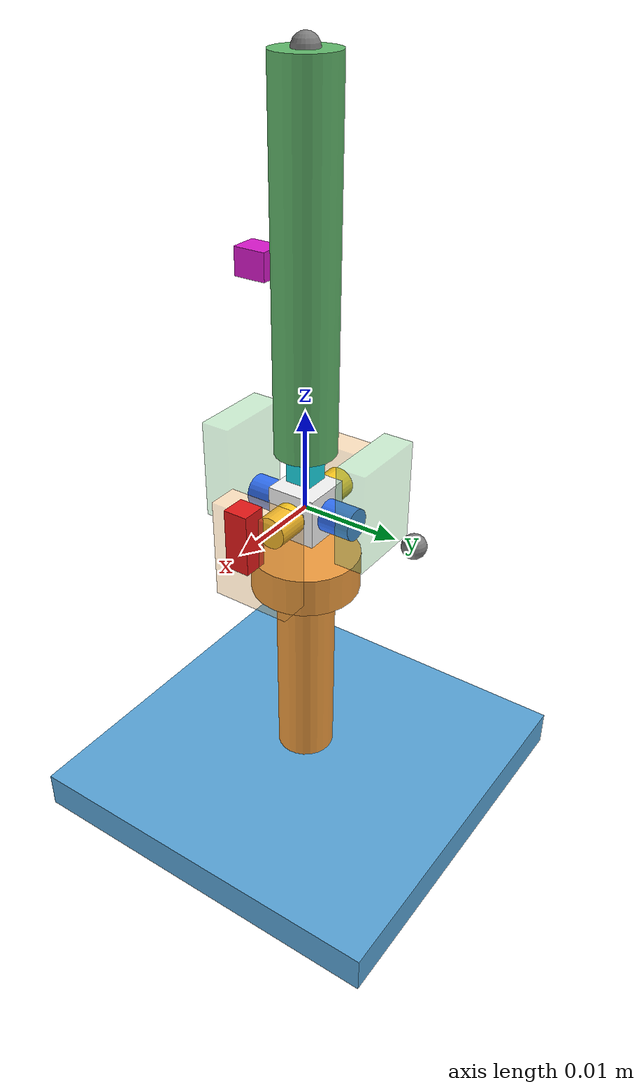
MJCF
<?xml version="1.0" ?>
<mujoco model="t2_ujoint_VA">
  <compiler angle="radian" autolimits="true"/>
  <option timestep="0.0001" integrator="implicitfast" cone="elliptic" impratio="10" gravity="0 0 0"/>
  <visual>
    <headlight ambient="0.5 0.5 0.5" diffuse="0.6 0.6 0.6" specular="0.2 0.2 0.2"/>
    <global offwidth="1280" offheight="960"/>
  </visual>
  <default>
    <geom density="0" contype="0" conaffinity="0" group="2"/>
  </default>
  <asset>
    <material name="base" rgba="0.35 0.65 0.85 1"/>
    <material name="input" rgba="0.95 0.62 0.25 1"/>
    <material name="yoke_in" rgba="0.98 0.68 0.30 0.35"/>
    <material name="output" rgba="0.38 0.72 0.42 1"/>
    <material name="yoke_out" rgba="0.45 0.82 0.50 0.35"/>
    <material name="cross_hub" rgba="0.97 0.97 0.97 1"/>
    <material name="cross_x" rgba="0.98 0.78 0.12 1"/>
    <material name="cross_y" rgba="0.20 0.45 0.98 1"/>
    <material name="mk_in" rgba="0.90 0.10 0.10 1"/>
    <material name="mk_cross" rgba="0.10 0.85 0.90 1"/>
    <material name="mk_out" rgba="0.85 0.10 0.80 1"/>
  </asset>
  <worldbody>
    <light pos="0.1 -0.2 0.3" dir="-0.2 0.4 -1" directional="true" diffuse="0.5 0.5 0.5"/>
    <camera name="side" pos="0 -0.16 0.0" xyaxes="1 0 0 0 0 1"/>
    <camera name="iso45" pos="0 -0.115 0.115" xyaxes="1 0 0 0 0.707 0.707"/>
    <geom name="base_plate" type="box" pos="0 0 -0.0335" size="0.02 0.02 0.002" material="base"/>
    <site name="wtip" pos="0.000000000 0.000000000 0.040000000" size="0.0012"/>
    <body name="input" pos="0 0 0">
      <joint name="jin" type="hinge" axis="0 0 1" pos="0 0 0" damping="1e-05" armature="1e-05"/>
      <geom name="in_shaft" type="cylinder" fromto="0 0 -0.030 0 0 -0.007" size="0.003" material="input" mass="0.008"/>
      <geom name="in_base" type="cylinder" fromto="0 0 -0.009 0 0 -0.005" size="0.0055" material="input" mass="0.002"/>
      <geom name="in_prongxp" type="box" pos="0.0075 0 -0.0015" size="0.0015 0.004 0.005" material="yoke_in" mass="0.001"/>
      <geom name="in_prongxn" type="box" pos="-0.0075 0 -0.0015" size="0.0015 0.004 0.005" material="yoke_in" mass="0.001"/>
      <geom name="mk_in" type="box" pos="0.009500000 0.000000000 0.001500000" size="0.001200000 0.001200000 0.003000000" material="mk_in"/>
      <body name="cross" pos="0 0 0">
        <joint name="pin1" type="hinge" axis="1 0 0" pos="0 0 0" damping="1e-05" armature="1e-05"/>
        <geom name="cr_hub" type="box" size="0.0025 0.0025 0.0025" material="cross_hub" mass="0.0008"/>
        <geom name="cr_trx" type="cylinder" fromto="-0.0058 0 0 0.0058 0 0" size="0.0016" material="cross_x" mass="0.0006"/>
        <geom name="cr_try" type="cylinder" fromto="0 -0.0058 0 0 0.0058 0" size="0.0016" material="cross_y" mass="0.0006"/>
        <geom name="mk_cross" type="box" pos="0.000000000 0.000000000 0.004200000" size="0.001300000 0.001300000 0.001200000" material="mk_cross"/>
        <body name="output" pos="0 0 0">
          <joint name="pin2" type="hinge" axis="0 1 0" pos="0 0 0" damping="1e-05" armature="1e-05"/>
          <geom name="out_shaft" type="cylinder" fromto="0.000000 0 0.006000 0.000000 0 0.040000" size="0.003" material="output" mass="0.008"/>
          <geom name="out_prongyp" type="box" pos="0.000000 0.0075 0.003000" size="0.004 0.0015 0.005" material="yoke_out" mass="0.001"/>
          <geom name="out_prongyn" type="box" pos="0.000000 -0.0075 0.003000" size="0.004 0.0015 0.005" material="yoke_out" mass="0.001"/>
          <site name="otip" pos="0.000000000 0.000000000 0.040000000" size="0.0012"/>
          <site name="omark" pos="0 0.012 0" size="0.0012"/>
          <geom name="mk_out" type="box" pos="0.000000000 -0.005000000 0.023000000" size="0.001300000 0.001600000 0.001300000" material="mk_out"/>
        </body>
      </body>
    </body>
  </worldbody>
  <equality>
    <connect body1="output" body2="world" anchor="0.000000000 0.000000000 0.040000000" solref="0.0002 1" solimp="0.99 0.999 1e-4 0.5 2"/>
  </equality>
  <actuator>
    <velocity name="drive" joint="jin" kv="0.5"/>
  </actuator>
</mujoco>
